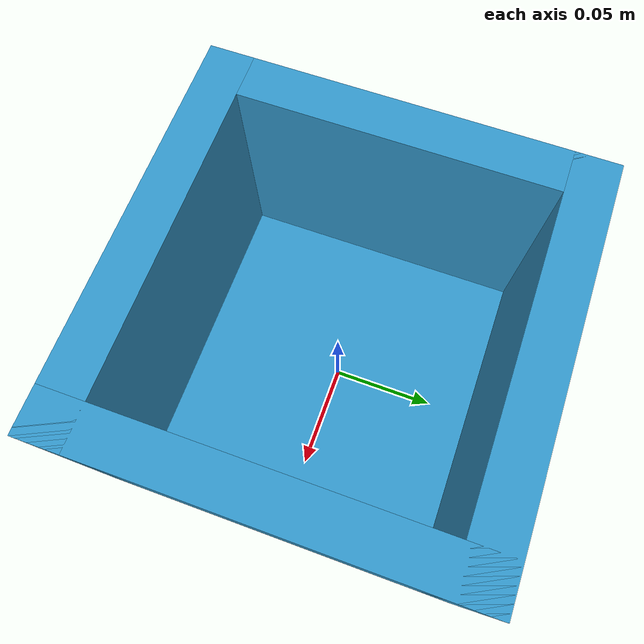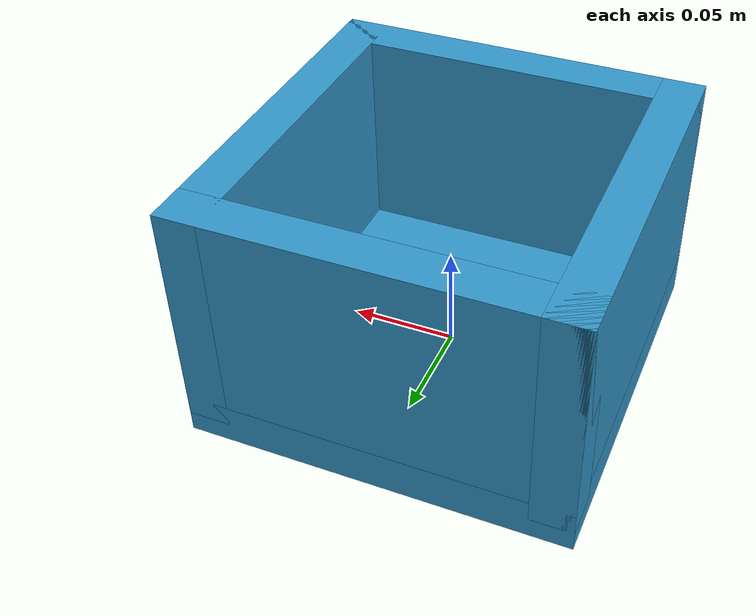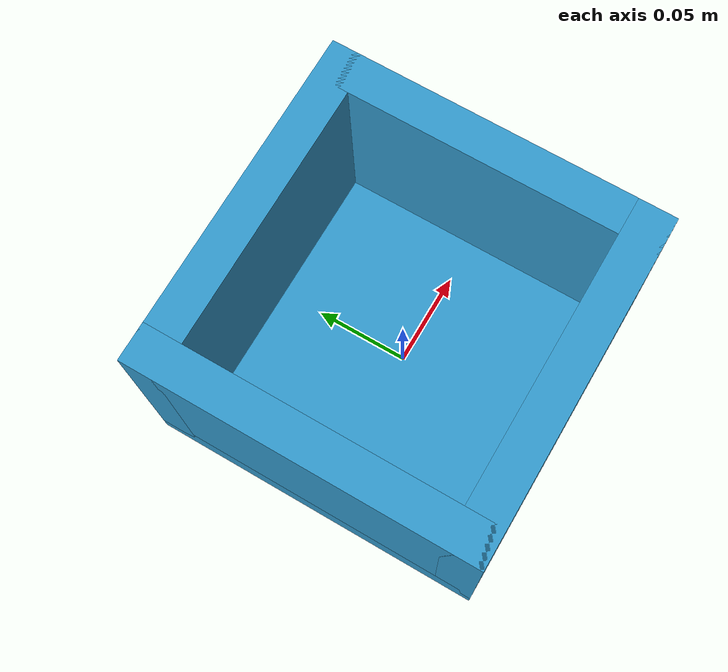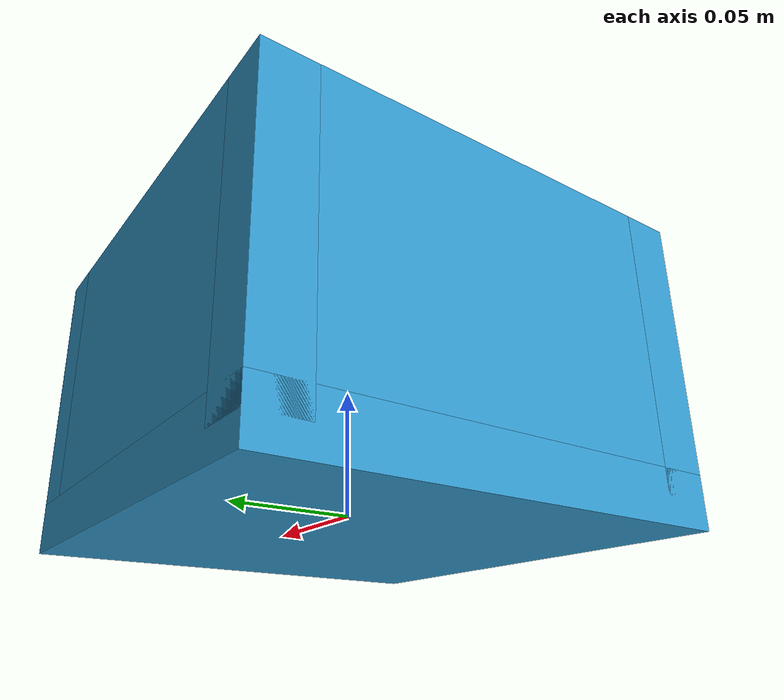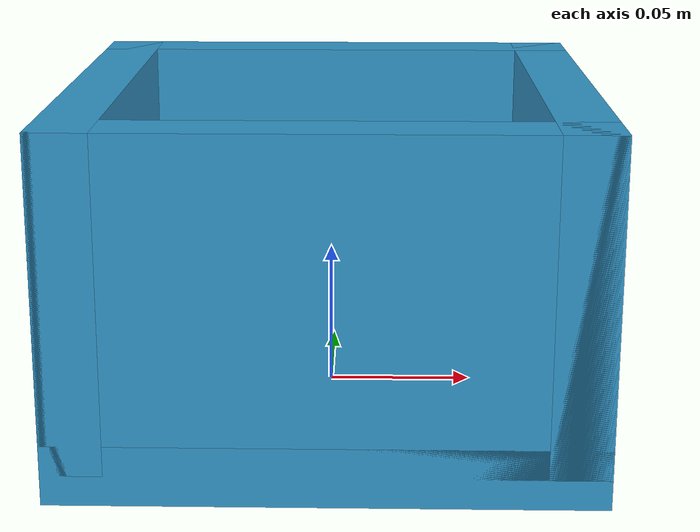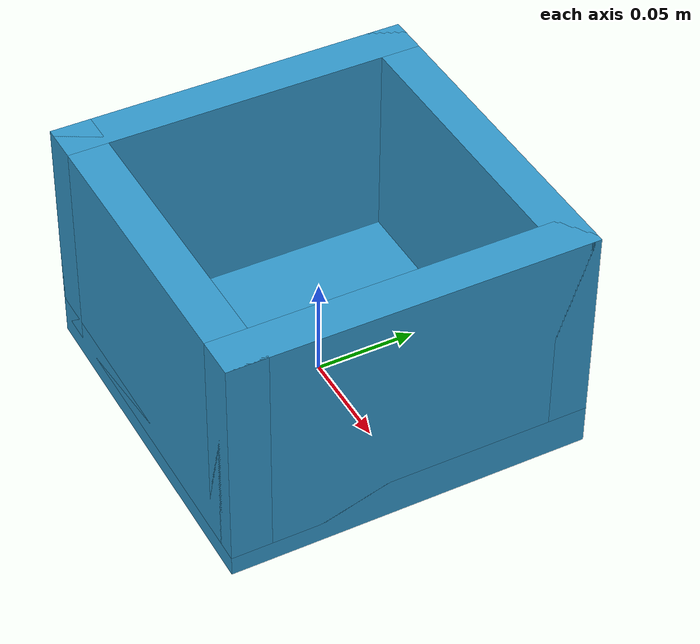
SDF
<?xml version="1.0" ?>
<sdf version="1.6">
  <model name="box">
    <static>true</static>
    <link name="link">
      <collision name="bottom">
        <pose>0 0 0 0 0 0</pose>
        <geometry>
          <box>
            <size>0.18 0.18 0.02</size>
          </box>
        </geometry>
        <surface>
          <friction>
            <ode>
              <mu>0.6</mu>
              <mu2>0.6</mu2>
            </ode>
          </friction>
        </surface>
      </collision>
      <collision name="front_wall">
        <pose>0 0.08 0.055 0 0 0</pose>
        <geometry>
          <box>
            <size>0.18 0.02 0.11</size>
          </box>
        </geometry>
      </collision>
      <collision name="back_wall">
        <pose>0 -0.08 0.055 0 0 0</pose>
        <geometry>
          <box>
            <size>0.18 0.02 0.11</size>
          </box>
        </geometry>
      </collision>
      <collision name="left_wall">
        <pose>-0.08 0 0.055 0 0 0</pose>
        <geometry>
          <box>
            <size>0.02 0.18 0.11</size>
          </box>
        </geometry>
      </collision>
      <collision name="right_wall">
        <pose>0.08 0 0.055 0 0 0</pose>
        <geometry>
          <box>
            <size>0.02 0.18 0.11</size>
          </box>
        </geometry>
      </collision>
      <visual name="bottom_visual">
        <pose>0 0 0 0 0 0</pose>
        <geometry>
          <box>
            <size>0.18 0.18 0.02</size>
          </box>
        </geometry>
        <material>
          <ambient>0.2 0.6 0.8 1.0</ambient>
          <diffuse>0.2 0.6 0.8 1.0</diffuse>
        </material>
      </visual>
      <visual name="front_wall_visual">
        <pose>0 0.08 0.055 0 0 0</pose>
        <geometry>
          <box>
            <size>0.18 0.02 0.11</size>
          </box>
        </geometry>
        <material>
          <ambient>0.2 0.6 0.8 1.0</ambient>
          <diffuse>0.2 0.6 0.8 1.0</diffuse>
        </material>
      </visual>
      <visual name="back_wall_visual">
        <pose>0 -0.08 0.055 0 0 0</pose>
        <geometry>
          <box>
            <size>0.18 0.02 0.11</size>
          </box>
        </geometry>
        <material>
          <ambient>0.2 0.6 0.8 1.0</ambient>
          <diffuse>0.2 0.6 0.8 1.0</diffuse>
        </material>
      </visual>
      <visual name="left_wall_visual">
        <pose>-0.08 0 0.055 0 0 0</pose>
        <geometry>
          <box>
            <size>0.02 0.18 0.11</size>
          </box>
        </geometry>
        <material>
          <ambient>0.2 0.6 0.8 1.0</ambient>
          <diffuse>0.2 0.6 0.8 1.0</diffuse>
        </material>
      </visual>
      <visual name="right_wall_visual">
        <pose>0.08 0 0.055 0 0 0</pose>
        <geometry>
          <box>
            <size>0.02 0.18 0.11</size>
          </box>
        </geometry>
        <material>
          <ambient>0.2 0.6 0.8 1.0</ambient>
          <diffuse>0.2 0.6 0.8 1.0</diffuse>
        </material>
      </visual>
    </link>
  </model>
</sdf>
